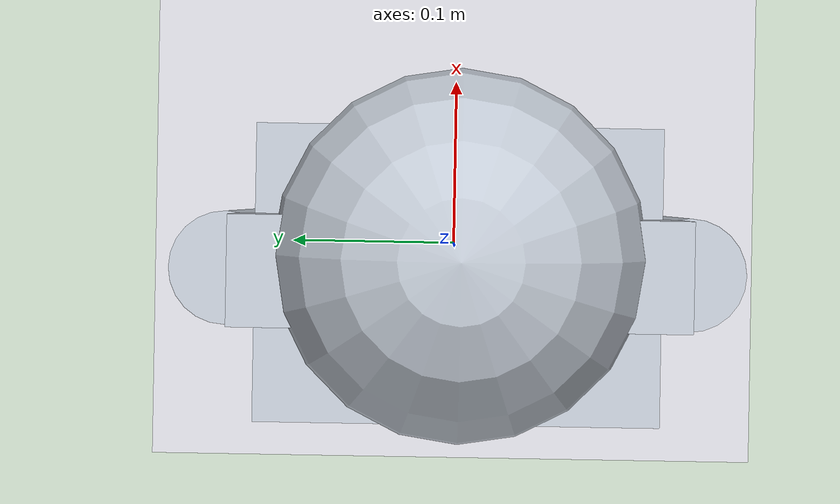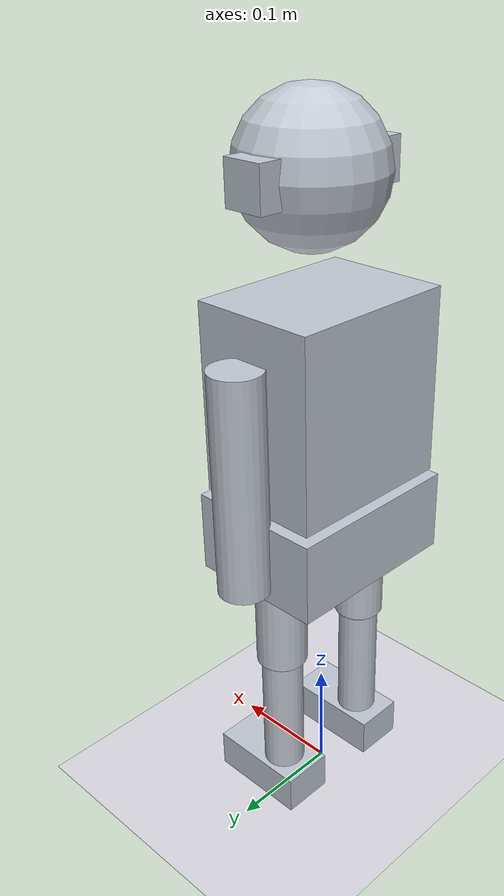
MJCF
<mujoco model="cara_full_body_dynamic">
  <compiler angle="radian" autolimits="true"/>
  <option gravity="0 0 -9.81" timestep="0.002" integrator="implicitfast"/>

  <visual>
    <headlight diffuse="0.6 0.6 0.6" ambient="0.35 0.35 0.35" specular="0 0 0"/>
    <rgba haze="0.15 0.25 0.35 1"/>
    <global azimuth="130" elevation="-20"/>
  </visual>

  <default>
    <geom contype="0" conaffinity="0" group="2"/>   <!-- link geoms: visual only -->
    <site type="sphere" size="0.006" group="3"/>
  </default>

  <worldbody>
    <light pos="0 0 1.5" dir="0 0 -1" diffuse="0.5 0.5 0.5"/>
    <geom name="floor" type="plane" size="1.0 1.0 0.02" pos="0 0 0" contype="1" conaffinity="1" condim="3" friction="1 0.005 0.0001" rgba="0.85 0.85 0.88 1" group="1"/>

    <body name="pelvis" pos="0 0 0.276801">
      <freejoint name="pelvis_free"/>
      <inertial pos="0 0 -0.01" mass="1.1" diaginertia="0.00279583333 0.00176916667 0.00366666667"/>
      <geom type="box" size="0.06 0.08 0.035" pos="0 0 -0.01" rgba="0.75 0.78 0.82 1"/>
      <site name="pelvis_frame" pos="0 0 0" rgba="0.9 0.5 0.2 1"/>
      <body name="l_thigh" pos="0 0.05 0">
        <joint name="l_hip_yaw" type="hinge" pos="0 0 0" axis="0 0 1" range="-0.79 0.79"/>
        <joint name="l_hip_roll" type="hinge" pos="0 0 0" axis="1 0 0" range="-0.52 0.61"/>
        <joint name="l_hip_pitch" type="hinge" pos="0 0 0" axis="0 1 0" range="-1.75 1.05"/>
        <inertial pos="0 0 -0.066" mass="0.22" diaginertia="0.000264 0.000264 5.324e-05"/>
        <geom type="cylinder" size="0.022 0.06" pos="0 0 -0.066" rgba="0.75 0.78 0.82 1"/>
        <site name="l_thigh_frame" pos="0 0 0" rgba="0.9 0.5 0.2 1"/>
        <body name="l_shin" pos="0 0 -0.12">
          <joint name="l_knee_pitch" type="hinge" pos="0 0 0" axis="0 1 0" range="0 2.36"/>
          <inertial pos="0 0 -0.0696" mass="0.18" diaginertia="0.000216 0.000216 2.916e-05"/>
          <geom type="cylinder" size="0.018 0.06" pos="0 0 -0.0696" rgba="0.75 0.78 0.82 1"/>
          <site name="l_shin_frame" pos="0 0 0" rgba="0.9 0.5 0.2 1"/>
          <body name="l_foot" pos="0 0 -0.12">
            <joint name="l_ankle_pitch" type="hinge" pos="0 0 0" axis="0 1 0" range="-0.87 0.61"/>
            <joint name="l_ankle_roll" type="hinge" pos="0 0 0" axis="1 0 0" range="-0.44 0.44"/>
            <inertial pos="0.015 0 -0.0175" mass="0.08" diaginertia="2.16666667e-05 6.21666667e-05 6.75e-05"/>
            <geom type="box" size="0.045 0.0225 0.0175" pos="0.015 0 -0.0175" rgba="0.75 0.78 0.82 1"/>
            <geom name="l_foot_collision" type="box" size="0.045 0.0225 0.0175" pos="0.015 0 -0.0175" contype="1" conaffinity="1" condim="3" friction="1 0.005 0.0001" rgba="0.9 0.6 0.3 0.35" group="4"/>
            <site name="l_foot_frame" pos="0 0 0" rgba="0.9 0.5 0.2 1"/>
            <site name="l_foot_sole_center" pos="0.015 0 -0.035" rgba="0.2 0.7 0.4 1"/>
          </body>
        </body>
      </body>
      <body name="torso" pos="0 0 0.035">
        <!-- base_to_torso: fixed, welded -->
        <inertial pos="0 0 0.075" mass="1.2" diaginertia="0.00481 0.00377 0.00346"/>
        <geom type="box" size="0.055 0.075 0.08" pos="0 0 0.075" rgba="0.75 0.78 0.82 1"/>
        <site name="torso_frame" pos="0 0 0" rgba="0.9 0.5 0.2 1"/>
        <body name="head" pos="0 0 0.195">
          <!-- neck_yaw: revolute (locked), welded -->
          <!-- neck_roll: revolute (locked), welded -->
          <!-- neck_pitch: revolute (locked), welded -->
          <inertial pos="0.01 0 0.05" mass="0.35" diaginertia="0.000504 0.000504 0.000504"/>
          <geom type="sphere" size="0.06" pos="0.01 0 0.05" rgba="0.75 0.78 0.82 1"/>
          <site name="head_frame" pos="0 0 0" rgba="0.9 0.5 0.2 1"/>
          <body name="l_ear" pos="0.005 0.055 0.05">
            <!-- l_ear_joint: revolute (locked), welded -->
            <inertial pos="0 0 0" mass="0.02" diaginertia="4.08333333e-06 4.08333333e-06 4.08333333e-06"/>
            <geom type="box" size="0.0175 0.0175 0.0175" pos="0 0 0" rgba="0.75 0.78 0.82 1"/>
            <site name="l_ear_frame" pos="0 0 0" rgba="0.9 0.5 0.2 1"/>
          </body>
          <body name="l_ear_servo" pos="0.005 0.03 0.045">
            <!-- l_ear_servo_mount: fixed, welded -->
            <inertial pos="0 0 0" mass="0.01" diaginertia="5.60833333e-07 7.74166667e-07 4.53333333e-07"/>
            <geom type="box" size="0.01 0.006 0.0115" pos="0 0 0" rgba="0.75 0.78 0.82 1"/>
            <site name="l_ear_servo_frame" pos="0 0 0" rgba="0.9 0.5 0.2 1"/>
          </body>
          <body name="r_ear" pos="0.005 -0.055 0.05">
            <!-- r_ear_joint: revolute (locked), welded -->
            <inertial pos="0 0 0" mass="0.02" diaginertia="4.08333333e-06 4.08333333e-06 4.08333333e-06"/>
            <geom type="box" size="0.0175 0.0175 0.0175" pos="0 0 0" rgba="0.75 0.78 0.82 1"/>
            <site name="r_ear_frame" pos="0 0 0" rgba="0.9 0.5 0.2 1"/>
          </body>
          <body name="r_ear_servo" pos="0.005 -0.03 0.045">
            <!-- r_ear_servo_mount: fixed, welded -->
            <inertial pos="0 0 0" mass="0.01" diaginertia="5.60833333e-07 7.74166667e-07 4.53333333e-07"/>
            <geom type="box" size="0.01 0.006 0.0115" pos="0 0 0" rgba="0.75 0.78 0.82 1"/>
            <site name="r_ear_servo_frame" pos="0 0 0" rgba="0.9 0.5 0.2 1"/>
          </body>
        </body>
        <body name="l_arm" pos="0 0.09 0.12">
          <!-- l_shoulder: fixed, welded -->
          <inertial pos="0 0 -0.095" mass="0.18" diaginertia="0.0005415 0.0005415 4.356e-05"/>
          <geom type="cylinder" size="0.022 0.095" pos="0 0 -0.095" rgba="0.75 0.78 0.82 1"/>
          <site name="l_arm_frame" pos="0 0 0" rgba="0.9 0.5 0.2 1"/>
        </body>
        <body name="r_arm" pos="0 -0.09 0.12">
          <!-- r_shoulder: fixed, welded -->
          <inertial pos="0 0 -0.095" mass="0.18" diaginertia="0.0005415 0.0005415 4.356e-05"/>
          <geom type="cylinder" size="0.022 0.095" pos="0 0 -0.095" rgba="0.75 0.78 0.82 1"/>
          <site name="r_arm_frame" pos="0 0 0" rgba="0.9 0.5 0.2 1"/>
        </body>
      </body>
      <body name="jetson" pos="0 0 -0.03">
        <!-- mount_jetson: fixed, welded -->
        <inertial pos="0 0 0" mass="0.15" diaginertia="7.25e-05 7.25e-05 0.0001225"/>
        <geom type="box" size="0.035 0.035 0.015" pos="0 0 0" rgba="0.75 0.78 0.82 1"/>
        <site name="jetson_frame" pos="0 0 0" rgba="0.9 0.5 0.2 1"/>
      </body>
      <body name="battery" pos="0 0 -0.03">
        <!-- mount_battery: fixed, welded -->
        <inertial pos="0 0 0" mass="0.25" diaginertia="9.375e-05 0.0001875 0.00024375"/>
        <geom type="box" size="0.045 0.03 0.015" pos="0 0 0" rgba="0.75 0.78 0.82 1"/>
        <site name="battery_frame" pos="0 0 0" rgba="0.9 0.5 0.2 1"/>
      </body>
      <body name="r_thigh" pos="0 -0.05 0">
        <joint name="r_hip_yaw" type="hinge" pos="0 0 0" axis="0 0 -1" range="-0.79 0.79"/>
        <joint name="r_hip_roll" type="hinge" pos="0 0 0" axis="-1 0 0" range="-0.52 0.61"/>
        <joint name="r_hip_pitch" type="hinge" pos="0 0 0" axis="0 1 0" range="-1.75 1.05"/>
        <inertial pos="0 0 -0.066" mass="0.22" diaginertia="0.000264 0.000264 5.324e-05"/>
        <geom type="cylinder" size="0.022 0.06" pos="0 0 -0.066" rgba="0.75 0.78 0.82 1"/>
        <site name="r_thigh_frame" pos="0 0 0" rgba="0.9 0.5 0.2 1"/>
        <body name="r_shin" pos="0 0 -0.12">
          <joint name="r_knee_pitch" type="hinge" pos="0 0 0" axis="0 1 0" range="0 2.36"/>
          <inertial pos="0 0 -0.0696" mass="0.18" diaginertia="0.000216 0.000216 2.916e-05"/>
          <geom type="cylinder" size="0.018 0.06" pos="0 0 -0.0696" rgba="0.75 0.78 0.82 1"/>
          <site name="r_shin_frame" pos="0 0 0" rgba="0.9 0.5 0.2 1"/>
          <body name="r_foot" pos="0 0 -0.12">
            <joint name="r_ankle_pitch" type="hinge" pos="0 0 0" axis="0 1 0" range="-0.87 0.61"/>
            <joint name="r_ankle_roll" type="hinge" pos="0 0 0" axis="-1 0 0" range="-0.44 0.44"/>
            <inertial pos="0.015 0 -0.0175" mass="0.08" diaginertia="2.16666667e-05 6.21666667e-05 6.75e-05"/>
            <geom type="box" size="0.045 0.0225 0.0175" pos="0.015 0 -0.0175" rgba="0.75 0.78 0.82 1"/>
            <geom name="r_foot_collision" type="box" size="0.045 0.0225 0.0175" pos="0.015 0 -0.0175" contype="1" conaffinity="1" condim="3" friction="1 0.005 0.0001" rgba="0.9 0.6 0.3 0.35" group="4"/>
            <site name="r_foot_frame" pos="0 0 0" rgba="0.9 0.5 0.2 1"/>
            <site name="r_foot_sole_center" pos="0.015 0 -0.035" rgba="0.2 0.7 0.4 1"/>
          </body>
        </body>
      </body>
    </body>
  </worldbody>

  <keyframe>
    <key name="stand_nominal" qpos="0 0 0.276801 1 0 0 0 0 0 -0.1 0.2 -0.1 0 0 0 -0.1 0.2 -0.1 0" ctrl="0 0 -0.1 0.2 -0.1 0 0 0 -0.1 0.2 -0.1 0"/>
    <key name="semi_squat" qpos="0 0 0.242605885 1 0 0 0 0 0 -0.55 1.1 -0.55 0 0 0 -0.55 1.1 -0.55 0" ctrl="0 0 -0.55 1.1 -0.55 0 0 0 -0.55 1.1 -0.55 0"/>
    <key name="stand_wide" qpos="0 0 0.274119522 1 0 0 0 0 0.15 -0.1 0.2 -0.1 -0.15 0 0.15 -0.1 0.2 -0.1 -0.15" ctrl="0 0.15 -0.1 0.2 -0.1 -0.15 0 0.15 -0.1 0.2 -0.1 -0.15"/>
  </keyframe>

  <actuator>
    <position name="l_hip_yaw" joint="l_hip_yaw" kp="30" dampratio="1" ctrlrange="-0.79 0.79" forcerange="-3 3"/>
    <position name="l_hip_roll" joint="l_hip_roll" kp="30" dampratio="1" ctrlrange="-0.52 0.61" forcerange="-3 3"/>
    <position name="l_hip_pitch" joint="l_hip_pitch" kp="45" dampratio="1" ctrlrange="-1.75 1.05" forcerange="-3 3"/>
    <position name="l_knee_pitch" joint="l_knee_pitch" kp="45" dampratio="1" ctrlrange="0 2.36" forcerange="-3 3"/>
    <position name="l_ankle_pitch" joint="l_ankle_pitch" kp="30" dampratio="1" ctrlrange="-0.87 0.61" forcerange="-2 2"/>
    <position name="l_ankle_roll" joint="l_ankle_roll" kp="30" dampratio="1" ctrlrange="-0.44 0.44" forcerange="-2 2"/>
    <position name="r_hip_yaw" joint="r_hip_yaw" kp="30" dampratio="1" ctrlrange="-0.79 0.79" forcerange="-3 3"/>
    <position name="r_hip_roll" joint="r_hip_roll" kp="30" dampratio="1" ctrlrange="-0.52 0.61" forcerange="-3 3"/>
    <position name="r_hip_pitch" joint="r_hip_pitch" kp="45" dampratio="1" ctrlrange="-1.75 1.05" forcerange="-3 3"/>
    <position name="r_knee_pitch" joint="r_knee_pitch" kp="45" dampratio="1" ctrlrange="0 2.36" forcerange="-3 3"/>
    <position name="r_ankle_pitch" joint="r_ankle_pitch" kp="30" dampratio="1" ctrlrange="-0.87 0.61" forcerange="-2 2"/>
    <position name="r_ankle_roll" joint="r_ankle_roll" kp="30" dampratio="1" ctrlrange="-0.44 0.44" forcerange="-2 2"/>
  </actuator>

</mujoco>
